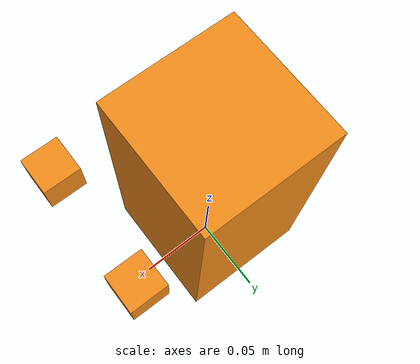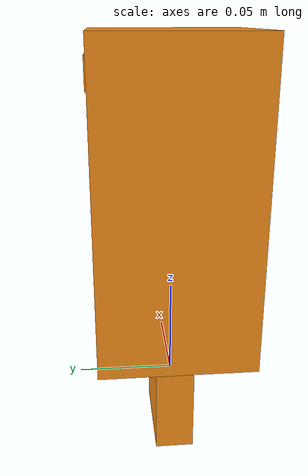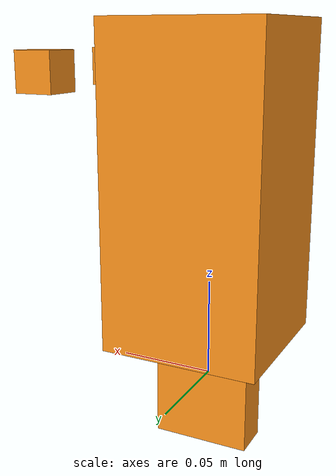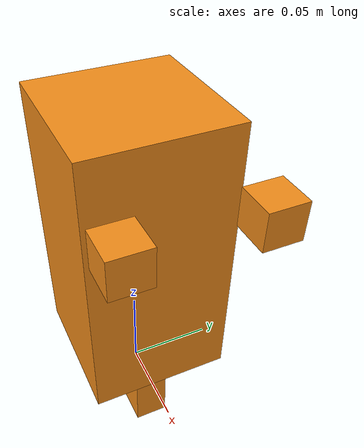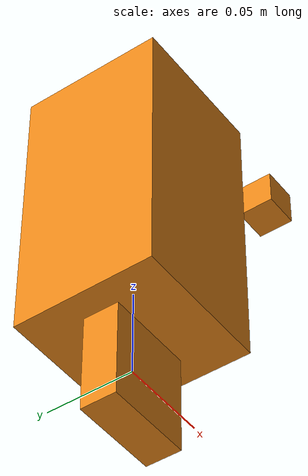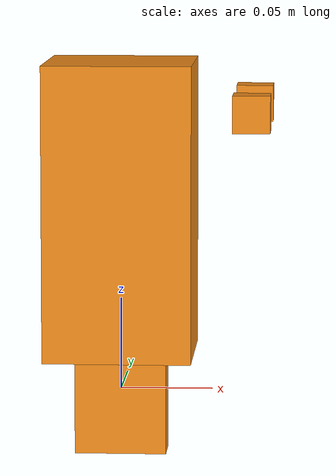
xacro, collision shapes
<robot name="flobi" xmlns:xacro="http://ros.org/wiki/xacro"
       xmlns:sensor="http://playerstage.sourceforge.net/gazebo/xmlschema/#sensor"
       xmlns:controller="http://playerstage.sourceforge.net/gazebo/xmlschema/#controller"
       xmlns:joint="http://playerstage.sourceforge.net/gazebo/xmlschema/#slider"
       xmlns:interface="http://playerstage.sourceforge.net/gazebo/xmlschema/#interface"
       xmlns:body="http://playerstage.sourceforge.net/gazebo/xmlschema/#body"
       xmlns:geom="http://playerstage.sourceforge.net/gazebo/xmlschema/#geom">

  <xacro:include filename="$(find agni_description)/urdf/util.urdf.xacro"/>

		<property name="flobi_elem_neck_mass" value="0.3"/>
		<property name="flobi_elem_head_mass" value="2.0"/>
		<property name="flobi_elem_eye_mass" value="0.2"/>

		<link name="flobi_base_link" />

		<joint name="flobi_base_joint" type="fixed">
      <origin xyz="0 0 0.0" rpy="0 0 0"/>
      <parent link="flobi_base_link"/>
      <child link="flobi_neck_base_link"/>
    </joint>

    <link name="flobi_neck_base_link">
      <inertial>
        <origin xyz="0 0 0.055" rpy="0 0 0"/>
        <mass value="${flobi_elem_neck_mass}" />
        <cylinder_inertia_def radius="0.05" length="0.11"
                              mass="${flobi_elem_neck_mass}"/>
      </inertial>
      <visual>
        <origin xyz="0 0 0" rpy="0 0 0"/>
        <geometry>
          <mesh scale="1.0 1.0 1.0"
					 filename="package://agni_description/flobi/flobi-neck.dae"/>
        </geometry>
        <material name="Orange"/>
      </visual>
      <collision>
        <origin xyz="0 0 0" rpy="0 0 0"/>
        <geometry name="flobi_neck_collision_geom">
          <box size="0.05 0.02 0.07" />
        </geometry>
      </collision>
    </link>

    <joint name="flobi_neck_pan_joint" type="revolute">
      <origin xyz="0 0 0.10" rpy="0 0 0"/>
      <axis xyz="0 0 1"/>
      <limit lower="${-90 * M_PI / 180}" upper="${+90 * M_PI / 180}"
             effort="20" velocity="1.57" />
      <dynamics damping="0.5"/>
      <parent link="flobi_neck_base_link"/>
      <child link="flobi_neck_beam_link"/>
    </joint>

		<link name="flobi_neck_beam_link">
      <inertial>
        <origin xyz="0 0 0.0" rpy="0 0 0"/>
        <mass value="0.1" />
        <cylinder_inertia_def radius="0.01" length="0.01"
                              mass="0.1"/>
      </inertial>
    </link>

    <joint name="flobi_neck_tilt_joint" type="revolute">
      <origin xyz="0 0 0.0" rpy="0 0 0"/>
      <axis xyz="0 1 0"/>
      <limit lower="${-45 * M_PI / 180}" upper="${+45 * M_PI / 180}"
             effort="20" velocity="1.57" />
      <dynamics damping="0.5"/>
      <parent link="flobi_neck_beam_link"/>
      <child link="flobi_neck_hub_link"/>
    </joint>

		<link name="flobi_neck_hub_link">
      <inertial>
        <origin xyz="0 0 0.0" rpy="0 0 0"/>
        <mass value="0.1" />
        <cylinder_inertia_def radius="0.01" length="0.01"
                              mass="0.1"/>
      </inertial>
    </link>

    <joint name="flobi_neck_roll_joint" type="revolute">
      <origin xyz="0 0 0.0" rpy="0 0 0"/>
      <axis xyz="1 0 0"/>
      <limit lower="${-25 * M_PI / 180}" upper="${+25 * M_PI / 180}"
             effort="20" velocity="1.57" />
      <dynamics damping="0.5"/>
      <parent link="flobi_neck_hub_link"/>
      <child link="flobi_head_link"/>
    </joint>

    <link name="flobi_head_link">
      <inertial>
        <origin xyz="0 0 0.0" rpy="0 0 0"/>
        <mass value="${flobi_elem_head_mass}" />
        <cylinder_inertia_def radius="0.08" length="0.16"
                              mass="${flobi_elem_head_mass}"/>
      </inertial>
      <visual>
        <origin xyz="0 0 0" rpy="0 0 0"/>
        <geometry>
          <mesh scale="1.0 1.0 1.0"
					 filename="package://agni_description/flobi/flobi-head.dae"/>
        </geometry>
        <material name="Orange"/>
      </visual>
      <collision>
        <origin xyz="0 0 0" rpy="0 0 0"/>
        <geometry name="flobi_head_collision_geom">
          <box size="0.08 0.08 0.16" />
        </geometry>
      </collision>
    </link>

     <joint name="flobi_eyes_left_lr_joint" type="revolute">
      <origin xyz="0.072 0.0337 0.055" rpy="0 0 0"/>
      <axis xyz="0 0 1"/>
      <limit lower="${-15 * M_PI / 180}" upper="${+15 * M_PI / 180}"
             effort="20" velocity="1.57" />
      <dynamics damping="0.5"/>
      <parent link="flobi_head_link"/>
      <child link="flobi_eyes_left_hub_link"/>
    </joint>

    <link name="flobi_eyes_left_hub_link">
      <inertial>
        <origin xyz="0 0 0.0" rpy="0 0 0"/>
        <mass value="0.1" />
        <cylinder_inertia_def radius="0.01" length="0.01"
                              mass="0.1"/>
      </inertial>
    </link>

     <joint name="flobi_eyes_left_ud_joint" type="revolute">
      <origin xyz="0 0 0.0" rpy="0 0 0"/>
      <axis xyz="0 1 0"/>
      <limit lower="${-20 * M_PI / 180}" upper="${+20 * M_PI / 180}"
             effort="20" velocity="1.57" />
      <dynamics damping="0.5"/>
      <parent link="flobi_eyes_left_hub_link"/>
      <child link="flobi_eyes_left_link"/>
    </joint>

     <link name="flobi_eyes_left_link">
      <inertial>
        <origin xyz="0 0 0.0" rpy="0 0 0"/>
        <mass value="${flobi_elem_eye_mass}" />
        <cylinder_inertia_def radius="0.02" length="0.02"
                              mass="${flobi_elem_eye_mass}"/>
      </inertial>
      <visual>
        <origin xyz="0 0 0" rpy="0 0 0"/>
        <geometry>
          <mesh scale="1.0 1.0 1.0"
					 filename="package://agni_description/flobi/flobi-eye-ball.dae"/>
        </geometry>
        <material name="Orange"/>
      </visual>
      <collision>
        <origin xyz="0 0 0" rpy="0 0 0"/>
        <geometry name="flobi_eye_left_collision_geom">
          <box size="0.02 0.02 0.02" />
        </geometry>
      </collision>
    </link>

    <joint name="flobi_eyes_right_lr_joint" type="revolute">
      <origin xyz="0.072 -0.0337 0.055" rpy="0 0 0"/>
      <axis xyz="0 0 1"/>
      <limit lower="${-15 * M_PI / 180}" upper="${+15 * M_PI / 180}"
             effort="20" velocity="1.57" />
      <dynamics damping="0.5"/>
      <parent link="flobi_head_link"/>
      <child link="flobi_eyes_right_hub_link"/>
    </joint>

    <link name="flobi_eyes_right_hub_link">
      <inertial>
        <origin xyz="0 0 0.0" rpy="0 0 0"/>
        <mass value="0.1" />
        <cylinder_inertia_def radius="0.01" length="0.01"
                              mass="0.1"/>
      </inertial>
    </link>

     <joint name="flobi_eye_right_ud_joint" type="revolute">
      <origin xyz="0 0 0.0" rpy="0 0 0"/>
      <axis xyz="0 1 0"/>
      <limit lower="${-20 * M_PI / 180}" upper="${+20 * M_PI / 180}"
             effort="20" velocity="1.57" />
      <dynamics damping="0.5"/>
      <parent link="flobi_eyes_right_hub_link"/>
      <child link="flobi_eyes_right_link"/>
    </joint>

     <link name="flobi_eyes_right_link">
      <inertial>
        <origin xyz="0 0 0.0" rpy="0 0 0"/>
        <mass value="${flobi_elem_eye_mass}" />
        <cylinder_inertia_def radius="0.02" length="0.02"
                              mass="${flobi_elem_eye_mass}"/>
      </inertial>
      <visual>
        <origin xyz="0 0 0" rpy="0 0 0"/>
        <geometry>
          <mesh scale="1.0 1.0 1.0"
					 filename="package://agni_description/flobi/flobi-eye-ball.dae"/>
        </geometry>
        <material name="Orange"/>
      </visual>
      <collision>
        <origin xyz="0 0 0" rpy="0 0 0"/>
        <geometry name="flobi_eye_left_collision_geom">
          <box size="0.02 0.02 0.02" />
        </geometry>
      </collision>
    </link>

</robot>
